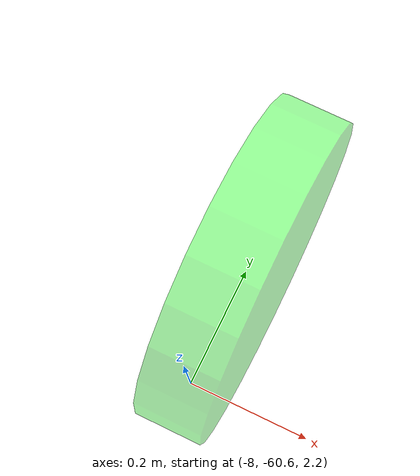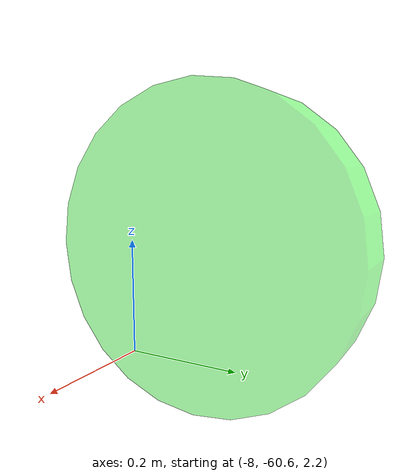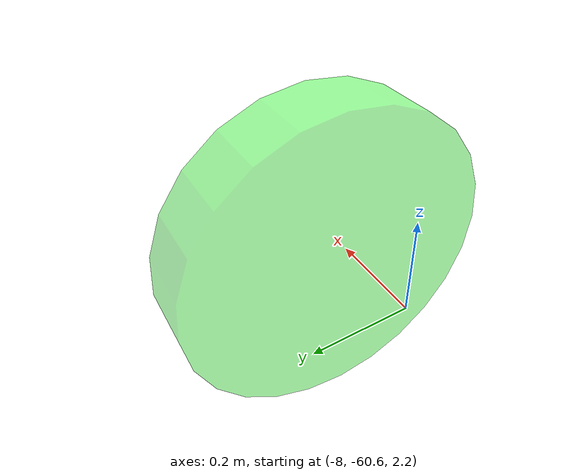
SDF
<?xml version="1.0" ?>
<sdf version="1.5">

  <model name="light_yellow">
    <static>true</static>

      <link name='Yellow_light_source'>
      <pose>-7.981019 -60.437627 2.4 1.57 0 1.57</pose>

      <light name='yellow' type='spot'>
        <pose>-7.981019 -59.782373 0 1.57 0 1.57</pose>
        <attenuation>
          <range>30</range>
          <linear>0.05</linear>
        </attenuation>
        <diffuse>0.5 1 1 1</diffuse>
        <specular>1 1 1 1</specular>
        <spot>
          <inner_angle>0.3</inner_angle>
          <outer_angle>0.35</outer_angle>
          <falloff>1</falloff>
        </spot>
        <direction>0 0 -1</direction>
      </light>

      <visual name='yellow'>
        <geometry>
          <cylinder>
            <radius>0.25</radius>
            <length>0.1</length>
          </cylinder>
          <sphere>
            <radius>0.4</radius>
          </sphere>
        </geometry>
        <transparency>0.6</transparency>

        <material>
          <ambient>0 1 0 1</ambient>
          <diffuse>0 1 0 1</diffuse>
          <specular>1 1 1 1</specular>
          <emissive>0 1 0 1 </emissive>
        </material>

      </visual>
      </link>

    <plugin name='yellow_light_controller' filename='libLedPlugin.so'>
      <enable>true</enable>

      <light>
        <id>Yellow_light_source/yellow</id>
        <duration>10000000</duration>
        <interval>1</interval>
        <enable>true</enable>
      </light>

      </plugin>
  </model>

</sdf>
